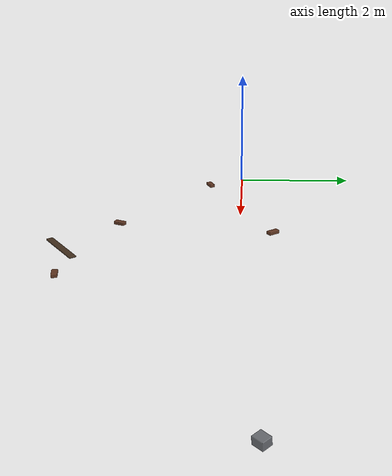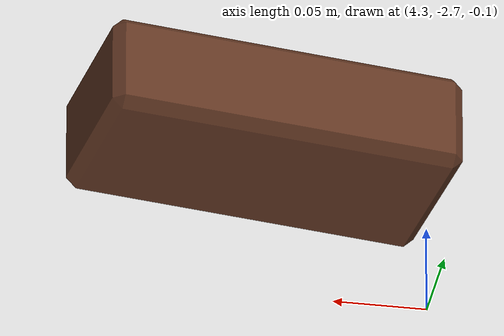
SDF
<?xml version='1.0'?>
<sdf version='1.8'>
  <model name='pulso_dynamic_debris'>
    <static>false</static>
    <self_collide>true</self_collide>
    <link name='deb_brick_01'>
      <pose>0.41999999 -0.57999998 0.0275 0 0 0</pose>
      <inertial>
        <mass>3.32210449</mass>
        <inertia>
          <ixx>0.00789385081</ixx><iyy>0.0130677401</iyy><izz>0.0192866966</izz>
          <ixy>0</ixy><ixz>0</ixz><iyz>0</iyz>
        </inertia>
      </inertial>
      <velocity_decay><linear>0.12</linear><angular>0.2</angular></velocity_decay>
      <collision name='collision'>
        <geometry><box><size>0.21018533 0.15965249 0.055</size></box></geometry>
        <surface>
          <friction><ode><mu>0.86</mu><mu2>0.78</mu2></ode></friction>
          <bounce><restitution_coefficient>0.015</restitution_coefficient><threshold>0.05</threshold></bounce>
        </surface>
      </collision>
      <visual name='visual'>
        <geometry>
          <mesh>
            <uri>model://pulso_dynamic_debris/meshes/vis_dyn_deb_brick_01.obj</uri>
            <scale>1 1 1</scale>
          </mesh>
        </geometry>
        <material><ambient>0.39 0.22 0.14 1</ambient><diffuse>0.39 0.22 0.14 1</diffuse></material>
      </visual>
    </link>
    <link name='deb_brick_02'>
      <pose>2.8499999 0.52999997 0.0275 0 0 0</pose>
      <inertial>
        <mass>3.8235815</mass>
        <inertia>
          <ixx>0.0143252478</ixx><iyy>0.0122982211</iyy><izz>0.0246957465</izz>
          <ixy>0</ixy><ixz>0</ixz><iyz>0</iyz>
        </inertia>
      </inertial>
      <velocity_decay><linear>0.12</linear><angular>0.2</angular></velocity_decay>
      <collision name='collision'>
        <geometry><box><size>0.18860532 0.20477702 0.055</size></box></geometry>
        <surface>
          <friction><ode><mu>0.86</mu><mu2>0.78</mu2></ode></friction>
          <bounce><restitution_coefficient>0.015</restitution_coefficient><threshold>0.05</threshold></bounce>
        </surface>
      </collision>
      <visual name='visual'>
        <geometry>
          <mesh>
            <uri>model://pulso_dynamic_debris/meshes/vis_dyn_deb_brick_02.obj</uri>
            <scale>1 1 1</scale>
          </mesh>
        </geometry>
        <material><ambient>0.39 0.22 0.14 1</ambient><diffuse>0.39 0.22 0.14 1</diffuse></material>
      </visual>
    </link>
    <link name='deb_brick_03'>
      <pose>2.29999995 -2 -0.0525 0 0 0</pose>
      <inertial>
        <mass>3.32442861</mass>
        <inertia>
          <ixx>0.0130773126</ixx><iyy>0.00790900822</iyy><izz>0.0193102548</izz>
          <ixy>0</ixy><ixz>0</ixz><iyz>0</iyz>
        </inertia>
      </inertial>
      <velocity_decay><linear>0.12</linear><angular>0.2</angular></velocity_decay>
      <collision name='collision'>
        <geometry><box><size>0.15976137 0.21018903 0.055</size></box></geometry>
        <surface>
          <friction><ode><mu>0.86</mu><mu2>0.78</mu2></ode></friction>
          <bounce><restitution_coefficient>0.015</restitution_coefficient><threshold>0.05</threshold></bounce>
        </surface>
      </collision>
      <visual name='visual'>
        <geometry>
          <mesh>
            <uri>model://pulso_dynamic_debris/meshes/vis_dyn_deb_brick_03.obj</uri>
            <scale>1 1 1</scale>
          </mesh>
        </geometry>
        <material><ambient>0.39 0.22 0.14 1</ambient><diffuse>0.39 0.22 0.14 1</diffuse></material>
      </visual>
    </link>
    <link name='deb_brick_04'>
      <pose>4.4000001 -2.61999989 -0.0525 0 0 0</pose>
      <inertial>
        <mass>2.33946875</mass>
        <inertia>
          <ixx>0.00327597475</ixx><iyy>0.00849092781</iyy><izz>0.0105874204</izz>
          <ixy>0</ixy><ixz>0</ixz><iyz>0</iyz>
        </inertia>
      </inertial>
      <velocity_decay><linear>0.12</linear><angular>0.2</angular></velocity_decay>
      <collision name='collision'>
        <geometry><box><size>0.20131594 0.11738265 0.055</size></box></geometry>
        <surface>
          <friction><ode><mu>0.86</mu><mu2>0.78</mu2></ode></friction>
          <bounce><restitution_coefficient>0.015</restitution_coefficient><threshold>0.05</threshold></bounce>
        </surface>
      </collision>
      <visual name='visual'>
        <geometry>
          <mesh>
            <uri>model://pulso_dynamic_debris/meshes/vis_dyn_deb_brick_04.obj</uri>
            <scale>1 1 1</scale>
          </mesh>
        </geometry>
        <material><ambient>0.39 0.22 0.14 1</ambient><diffuse>0.39 0.22 0.14 1</diffuse></material>
      </visual>
    </link>
    <link name='deb_chunk_01'>
      <pose>8.19999981 0.30000001 -0.095 0 0 0</pose>
      <inertial>
        <mass>10.7189449</mass>
        <inertia>
          <ixx>0.057033892</ixx><iyy>0.0595991044</iyy><izz>0.0858487345</izz>
          <ixy>0</ixy><ixz>0</ixz><iyz>0</iyz>
        </inertia>
      </inertial>
      <velocity_decay><linear>0.12</linear><angular>0.2</angular></velocity_decay>
      <collision name='collision'>
        <geometry><box><size>0.22246413 0.21591318 0.13126954</size></box></geometry>
        <surface>
          <friction><ode><mu>0.86</mu><mu2>0.78</mu2></ode></friction>
          <bounce><restitution_coefficient>0.015</restitution_coefficient><threshold>0.05</threshold></bounce>
        </surface>
      </collision>
      <visual name='visual'>
        <geometry>
          <mesh>
            <uri>model://pulso_dynamic_debris/meshes/vis_dyn_deb_chunk_01.obj</uri>
            <scale>1 1 1</scale>
          </mesh>
        </geometry>
        <material><ambient>0.42 0.43 0.45 1</ambient><diffuse>0.42 0.43 0.45 1</diffuse></material>
      </visual>
    </link>
    <link name='deb_plank_01'>
      <pose>3.39999986 -2.75 -0.066 0 0 0</pose>
      <inertial>
        <mass>8.87731464</mass>
        <inertia>
          <ixx>0.278073858</ixx><iyy>0.469790522</iyy><izz>0.746704411</izz>
          <ixy>0</ixy><ixz>0</ixz><iyz>0</iyz>
        </inertia>
      </inertial>
      <velocity_decay><linear>0.12</linear><angular>0.2</angular></velocity_decay>
      <collision name='collision'>
        <geometry><box><size>0.79640448 0.61245829 0.028</size></box></geometry>
        <surface>
          <friction><ode><mu>0.86</mu><mu2>0.78</mu2></ode></friction>
          <bounce><restitution_coefficient>0.015</restitution_coefficient><threshold>0.05</threshold></bounce>
        </surface>
      </collision>
      <visual name='visual'>
        <geometry>
          <mesh>
            <uri>model://pulso_dynamic_debris/meshes/vis_dyn_deb_plank_01.obj</uri>
            <scale>1 1 1</scale>
          </mesh>
        </geometry>
        <material><ambient>0.28 0.2 0.13 1</ambient><diffuse>0.28 0.2 0.13 1</diffuse></material>
      </visual>
    </link>
  </model>
</sdf>
